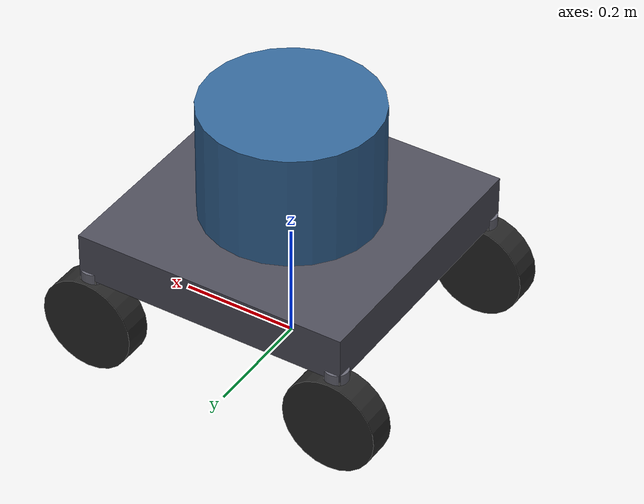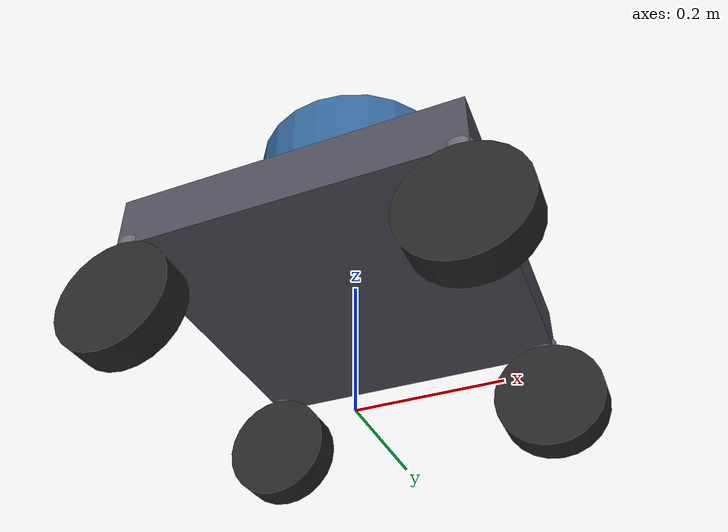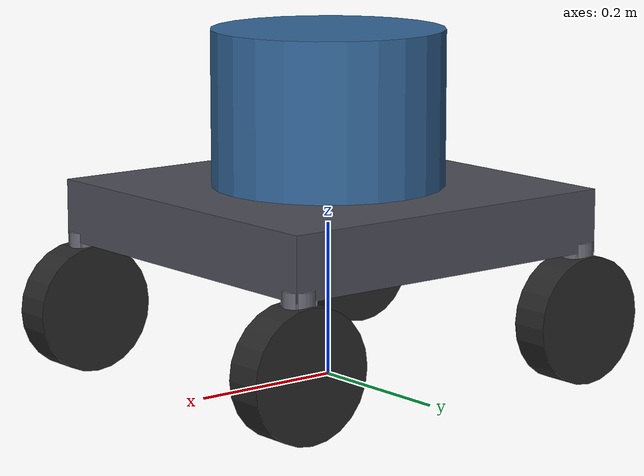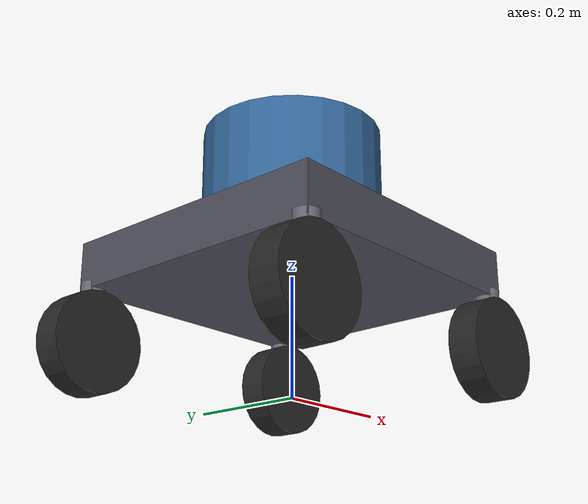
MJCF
<mujoco>
  <!-- BallButler Rover — shared chassis, swerve modules, actuators,      -->
  <!-- sensors, and contact exclusions.                                   -->
  <!-- Included by scene.xml and scene_terrain.xml.  Any changes here     -->
  <!-- apply to ALL scenes automatically.                                 -->
  <!-- Coordinate frame: x-forward, y-left, z-up                         -->
  <!-- Chassis centre at z=0.21 m (clearance above wheel tops)           -->
  <!-- Chassis box: 480x480x80 mm                                        -->
  <!-- Wheel centres at z=0.0825 m (wheel radius)                       -->
  <!-- Track and wheelbase: 450 mm (+-225 mm from centre)                -->
  <!-- Module kinematic chain (from chassis outward):                     -->
  <!--   yaw hinge (chassis-mounted motor) ->                            -->
  <!--   prismatic slide (spline shaft suspension) ->                    -->
  <!--   fork body ->                                                     -->
  <!--   drive hinge (hub motor) ->                                      -->
  <!--   wheel                                                            -->
  <!-- Suspension parameters:                                             -->
  <!--   Sprung mass per corner: ~4.8 kg                                 -->
  <!--   Stiffness: 3600 N/m  (natural freq ~4.4 Hz)                    -->
  <!--   Damping: 100 N-s/m   (damping ratio ~0.39)                     -->
  <!--   Travel: +-25 mm (50 mm total)                                   -->
  <!--   springref: -0.013 m  (preload for ~zero static sag at q=0)     -->

  <asset>
    <material name="chassis_mat" rgba="0.3 0.3 0.35 1" />
    <material name="payload_mat" rgba="0.2 0.4 0.6 1" />
    <material name="yaw_motor_mat" rgba="0.4 0.4 0.45 1" />
    <material name="fork_mat" rgba="0.5 0.5 0.5 1" />
    <material name="wheel_mat" rgba="0.15 0.15 0.15 1" />
  </asset>

  <!-- CONTACT EXCLUSIONS                                                  -->
  <!-- Parent-child exclusions are automatic in MuJoCo.  We only need     -->
  <!-- explicit exclusions for non-adjacent bodies in the kinematic chain: -->
  <!--   chassis -> yaw_body -> fork -> wheel                              -->
  <!-- Automatic: chassis<->yaw_body, yaw_body<->fork, fork<->wheel       -->
  <!-- Manual:    chassis<->fork, chassis<->wheel, yaw_body<->wheel        -->
  <contact>
    <!-- FL module -->
    <exclude body1="chassis" body2="fl_fork" />
    <exclude body1="chassis" body2="fl_wheel" />
    <exclude body1="fl_yaw_body" body2="fl_wheel" />
    <!-- FR module -->
    <exclude body1="chassis" body2="fr_fork" />
    <exclude body1="chassis" body2="fr_wheel" />
    <exclude body1="fr_yaw_body" body2="fr_wheel" />
    <!-- RL module -->
    <exclude body1="chassis" body2="rl_fork" />
    <exclude body1="chassis" body2="rl_wheel" />
    <exclude body1="rl_yaw_body" body2="rl_wheel" />
    <!-- RR module -->
    <exclude body1="chassis" body2="rr_fork" />
    <exclude body1="chassis" body2="rr_wheel" />
    <exclude body1="rr_yaw_body" body2="rr_wheel" />
  </contact>

  <worldbody>
    <!-- ROVER CHASSIS                                                     -->
    <body name="chassis" pos="0 0 0.21">
      <freejoint name="chassis_free" />

      <!-- Chassis box: 480x480x80 mm, 10 kg -->
      <geom name="chassis_geom" type="box" size="0.24 0.24 0.04" mass="10"
            material="chassis_mat" />

      <!-- Lumped payload (Ball Butler + hopper + sensors + battery + compute) -->
      <!-- Cylinder: 300 mm diameter, 200 mm tall, centred 140 mm above chassis centre -->
      <geom name="payload" type="cylinder" pos="0 0 0.14" size="0.15 0.10" mass="8"
            material="payload_mat" contype="0" conaffinity="0" />

      <!-- IMU sensor site at chassis centre -->
      <site name="imu_site" pos="0 0 0" size="0.01" />

      <!-- ── FRONT-LEFT MODULE  (x=+0.225, y=+0.225) ─────────────── -->
      <body name="fl_yaw_body" pos="0.225 0.225 -0.04">
        <joint name="fl_yaw" type="hinge" axis="0 0 1" damping="2.0" />
        <geom name="fl_yaw_geom" type="cylinder" size="0.02 0.012"
              mass="0.3" material="yaw_motor_mat" contype="0" conaffinity="0" />
        <body name="fl_fork" pos="0 0 0">
          <joint name="fl_susp" type="slide" axis="0 0 1" limited="true"
                 range="-0.025 0.025" stiffness="3600" damping="100"
                 springref="-0.013" />
          <geom name="fl_fork_geom" type="box" size="0.015 0.015 0.044"
                pos="0 0 -0.044" mass="0.2" material="fork_mat" />
          <body name="fl_wheel" pos="0 0 -0.0875">
            <joint name="fl_drive" type="hinge" axis="0 1 0" damping="0.05" />
            <geom name="fl_wheel_geom" type="cylinder" size="0.0825 0.025"
                  euler="90 0 0" mass="2.5" material="wheel_mat"
                  friction="1.0 0.005 0.001" condim="4" />
          </body>
        </body>
      </body>

      <!-- ── FRONT-RIGHT MODULE (x=+0.225, y=-0.225) ─────────────── -->
      <body name="fr_yaw_body" pos="0.225 -0.225 -0.04">
        <joint name="fr_yaw" type="hinge" axis="0 0 1" damping="2.0" />
        <geom name="fr_yaw_geom" type="cylinder" size="0.02 0.012"
              mass="0.3" material="yaw_motor_mat" contype="0" conaffinity="0" />
        <body name="fr_fork" pos="0 0 0">
          <joint name="fr_susp" type="slide" axis="0 0 1" limited="true"
                 range="-0.025 0.025" stiffness="3600" damping="100"
                 springref="-0.013" />
          <geom name="fr_fork_geom" type="box" size="0.015 0.015 0.044"
                pos="0 0 -0.044" mass="0.2" material="fork_mat" />
          <body name="fr_wheel" pos="0 0 -0.0875">
            <joint name="fr_drive" type="hinge" axis="0 1 0" damping="0.05" />
            <geom name="fr_wheel_geom" type="cylinder" size="0.0825 0.025"
                  euler="90 0 0" mass="2.5" material="wheel_mat"
                  friction="1.0 0.005 0.001" condim="4" />
          </body>
        </body>
      </body>

      <!-- ── REAR-LEFT MODULE   (x=-0.225, y=+0.225) ─────────────── -->
      <body name="rl_yaw_body" pos="-0.225 0.225 -0.04">
        <joint name="rl_yaw" type="hinge" axis="0 0 1" damping="2.0" />
        <geom name="rl_yaw_geom" type="cylinder" size="0.02 0.012"
              mass="0.3" material="yaw_motor_mat" contype="0" conaffinity="0" />
        <body name="rl_fork" pos="0 0 0">
          <joint name="rl_susp" type="slide" axis="0 0 1" limited="true"
                 range="-0.025 0.025" stiffness="3600" damping="100"
                 springref="-0.013" />
          <geom name="rl_fork_geom" type="box" size="0.015 0.015 0.044"
                pos="0 0 -0.044" mass="0.2" material="fork_mat" />
          <body name="rl_wheel" pos="0 0 -0.0875">
            <joint name="rl_drive" type="hinge" axis="0 1 0" damping="0.05" />
            <geom name="rl_wheel_geom" type="cylinder" size="0.0825 0.025"
                  euler="90 0 0" mass="2.5" material="wheel_mat"
                  friction="1.0 0.005 0.001" condim="4" />
          </body>
        </body>
      </body>

      <!-- ── REAR-RIGHT MODULE  (x=-0.225, y=-0.225) ─────────────── -->
      <body name="rr_yaw_body" pos="-0.225 -0.225 -0.04">
        <joint name="rr_yaw" type="hinge" axis="0 0 1" damping="2.0" />
        <geom name="rr_yaw_geom" type="cylinder" size="0.02 0.012"
              mass="0.3" material="yaw_motor_mat" contype="0" conaffinity="0" />
        <body name="rr_fork" pos="0 0 0">
          <joint name="rr_susp" type="slide" axis="0 0 1" limited="true"
                 range="-0.025 0.025" stiffness="3600" damping="100"
                 springref="-0.013" />
          <geom name="rr_fork_geom" type="box" size="0.015 0.015 0.044"
                pos="0 0 -0.044" mass="0.2" material="fork_mat" />
          <body name="rr_wheel" pos="0 0 -0.0875">
            <joint name="rr_drive" type="hinge" axis="0 1 0" damping="0.05" />
            <geom name="rr_wheel_geom" type="cylinder" size="0.0825 0.025"
                  euler="90 0 0" mass="2.5" material="wheel_mat"
                  friction="1.0 0.005 0.001" condim="4" />
          </body>
        </body>
      </body>

    </body><!-- end chassis -->
  </worldbody>

  <!-- ACTUATORS                                                          -->
  <!-- Yaw: position-controlled (kp=50 N-m/rad, torque limit +-10 N-m)   -->
  <!-- Drive: velocity-controlled (kv=10 N-m-s/rad, torque limit +-30 N-m)-->
  <!-- Suspension is passive (spring-damper on the prismatic joint).      -->
  <actuator>
    <!-- Yaw actuators (position control) -->
    <position name="fl_yaw_act" joint="fl_yaw" kp="50" ctrlrange="-3.14159 3.14159"
              forcerange="-10 10" />
    <position name="fr_yaw_act" joint="fr_yaw" kp="50" ctrlrange="-3.14159 3.14159"
              forcerange="-10 10" />
    <position name="rl_yaw_act" joint="rl_yaw" kp="50" ctrlrange="-3.14159 3.14159"
              forcerange="-10 10" />
    <position name="rr_yaw_act" joint="rr_yaw" kp="50" ctrlrange="-3.14159 3.14159"
              forcerange="-10 10" />

    <!-- Drive actuators (velocity control) -->
    <velocity name="fl_drive_act" joint="fl_drive" kv="10" ctrlrange="-30 30"
              forcerange="-30 30" />
    <velocity name="fr_drive_act" joint="fr_drive" kv="10" ctrlrange="-30 30"
              forcerange="-30 30" />
    <velocity name="rl_drive_act" joint="rl_drive" kv="10" ctrlrange="-30 30"
              forcerange="-30 30" />
    <velocity name="rr_drive_act" joint="rr_drive" kv="10" ctrlrange="-30 30"
              forcerange="-30 30" />
  </actuator>

  <!-- SENSORS                                                            -->
  <sensor>
    <!-- Chassis IMU -->
    <accelerometer name="imu_accel" site="imu_site" />
    <gyro name="imu_gyro" site="imu_site" />

    <!-- Yaw joint positions -->
    <jointpos name="fl_yaw_pos" joint="fl_yaw" />
    <jointpos name="fr_yaw_pos" joint="fr_yaw" />
    <jointpos name="rl_yaw_pos" joint="rl_yaw" />
    <jointpos name="rr_yaw_pos" joint="rr_yaw" />

    <!-- Drive joint velocities -->
    <jointvel name="fl_drive_vel" joint="fl_drive" />
    <jointvel name="fr_drive_vel" joint="fr_drive" />
    <jointvel name="rl_drive_vel" joint="rl_drive" />
    <jointvel name="rr_drive_vel" joint="rr_drive" />

    <!-- Suspension joint positions -->
    <jointpos name="fl_susp_pos" joint="fl_susp" />
    <jointpos name="fr_susp_pos" joint="fr_susp" />
    <jointpos name="rl_susp_pos" joint="rl_susp" />
    <jointpos name="rr_susp_pos" joint="rr_susp" />
  </sensor>
</mujoco>
